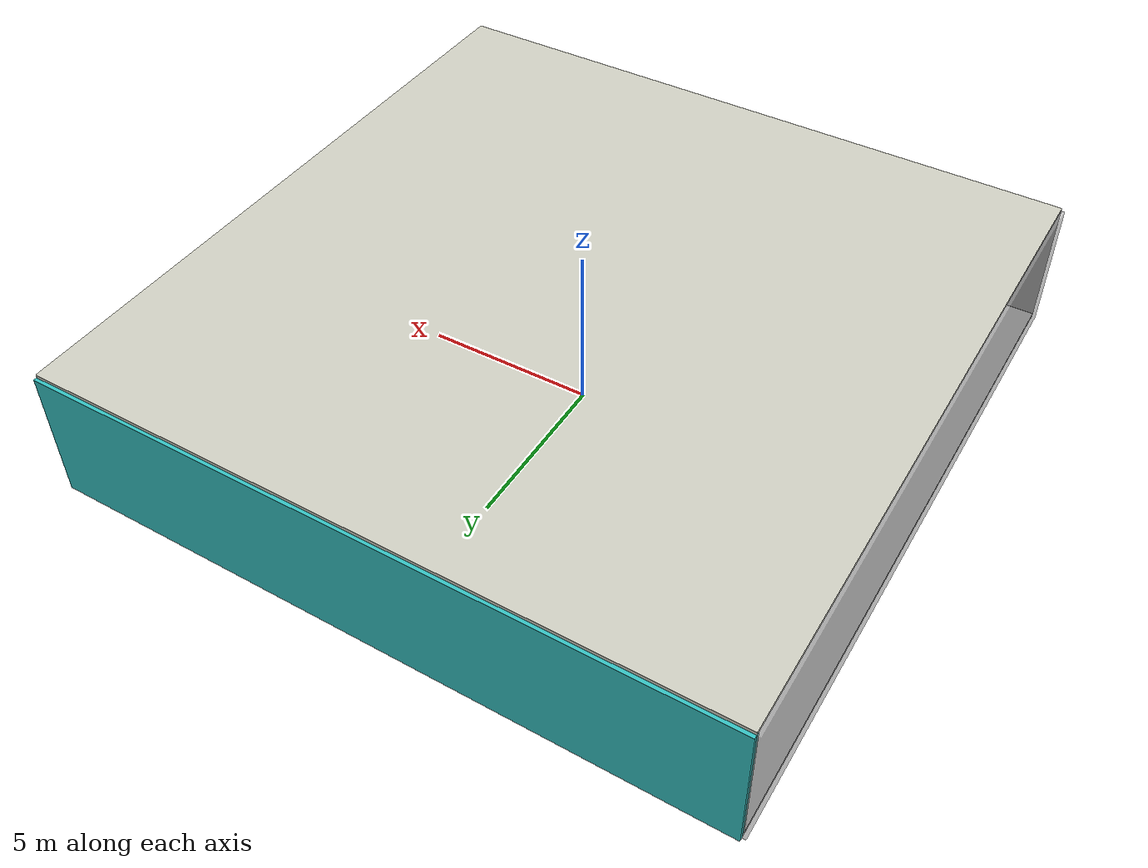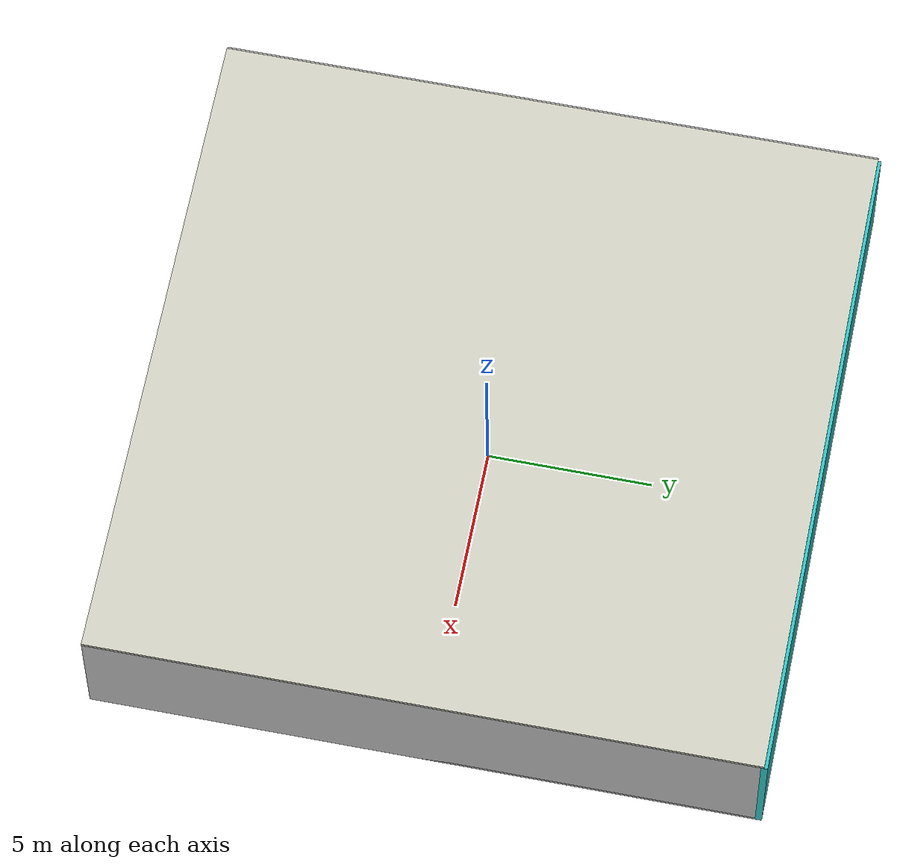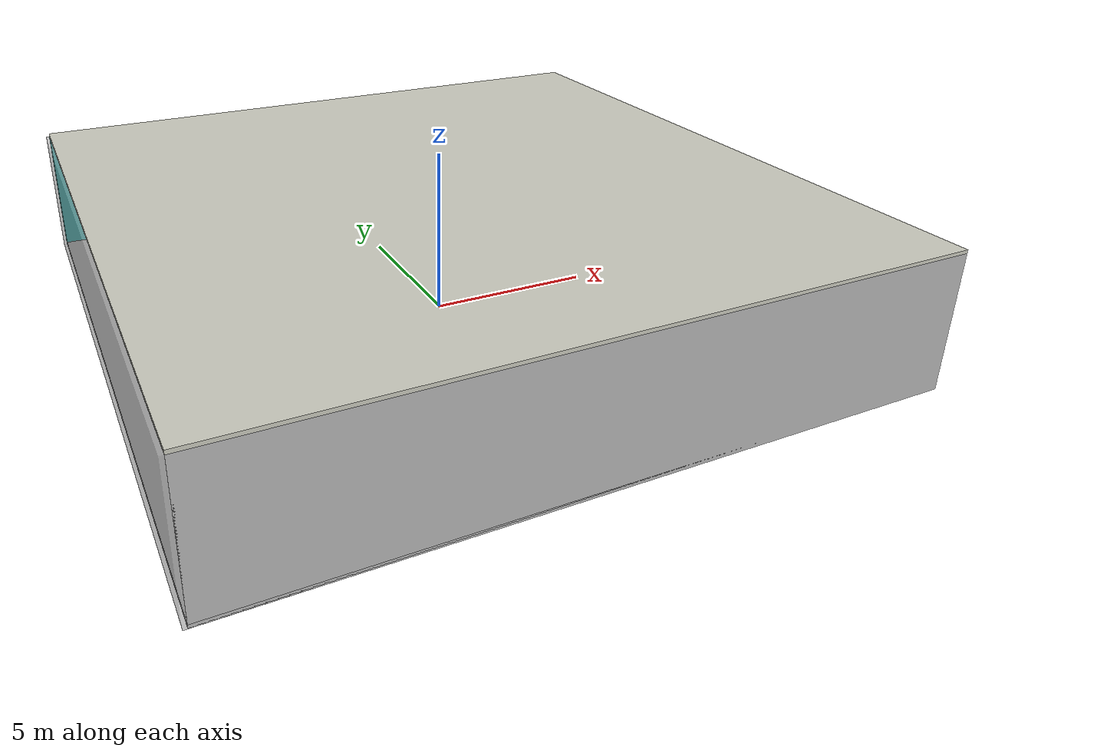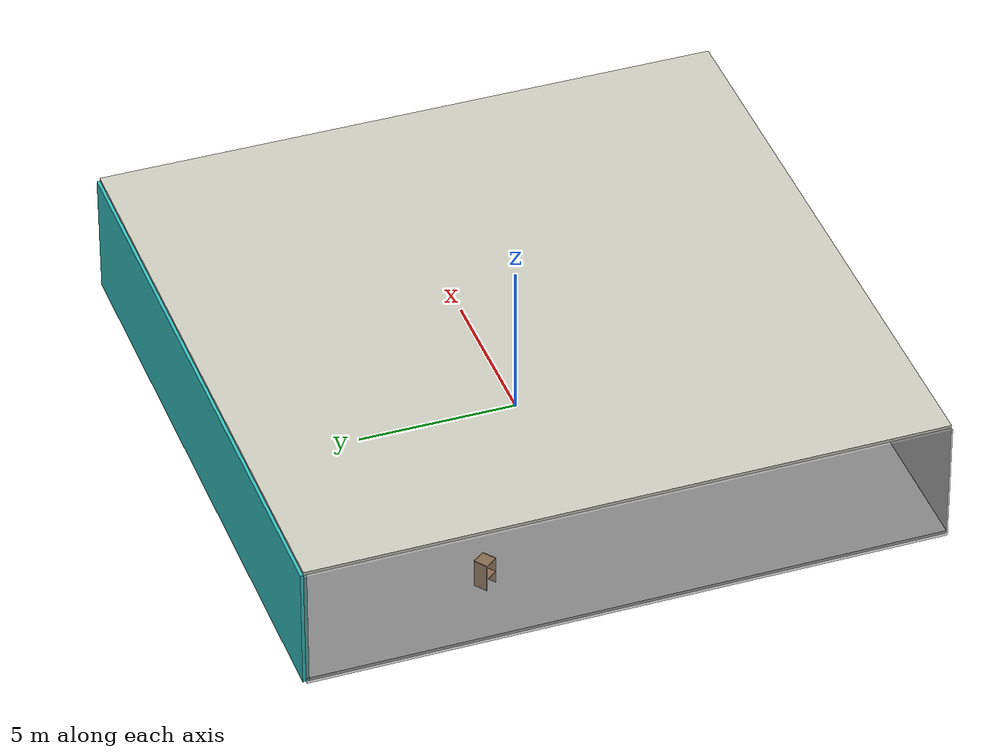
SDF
<sdf version="1.4">
 <world name="default">
  <physics type="ode">
   <max_step_size>0.001</max_step_size>
   <real_time_factor>1</real_time_factor>
   <real_time_update_rate>1000</real_time_update_rate>
   <gravity>0 0 -9.8</gravity>
  </physics>
  <scene><ambient>0.4 0.4 0.4 1</ambient><background>0.7 0.7 0.7 1</background><shadows>1</shadows></scene>
  <model name="Surrounding">
   <static>1</static>
   <link name="Ceiling">
    <collision name="Ceiling_Collision"><geometry><box><size>20 20 0.1</size></box></geometry></collision>
    <visual name="Ceiling_Visual">
     <geometry><box><size>20 20 0.1</size></box></geometry>
     <material>
      <script><uri>file://media/materials/scripts/gazebo.material</uri><name>Gazebo/PaintedWall</name></script>
     </material>
    </visual>
    <pose>0 0 4.05 0 0 0</pose>
   </link>
   <link name="Wall_South">
    <collision name="Wall_South_Collision">
     <geometry><box><size>20 0 4</size></box></geometry>
     <pose>0 0 2 0 -0 0</pose>
    </collision>
    <visual name="Wall_South_Visual">
     <pose>0 0 2 0 -0 0</pose>
     <geometry><box><size>20 0 4</size></box></geometry>
     <material>
      <script><uri>file://media/materials/scripts/gazebo.material</uri><name>Gazebo/PioneerBody</name></script>
     </material>
    </visual>
    <velocity_decay><linear>0</linear><angular>0</angular></velocity_decay>
    <pose>0 -10 0 0 -0 0</pose>
   </link>
   <link name="Wall_East">
    <collision name="Wall_21_Collision">
     <geometry><box><size>20 0 4</size></box></geometry>
     <pose>0 0 2 0 -0 0</pose>
    </collision>
    <visual name="Wall_21_Visual">
     <pose>0 0 2 0 -0 0</pose>
     <geometry><box><size>20 0 4</size></box></geometry>
     <material>
      <script><uri>file://media/materials/scripts/gazebo.material</uri><name>Gazebo/Pioneer2Body</name></script>
     </material>
    </visual>
    <velocity_decay><linear>0</linear><angular>0</angular></velocity_decay>
    <pose>10 0 0 0 -0 1.5708</pose>
   </link>
   <link name="Wall_North">
    <collision name="Wall_22_Collision">
     <geometry><box><size>20 0.2 4</size></box></geometry>
     <pose>0 0 2 0 -0 0</pose>
    </collision>
    <visual name="Wall_22_Visual">
     <pose>0 0 2 0 -0 0</pose>
     <geometry><box><size>20 0.2 4</size></box></geometry>
     <material>
      <script><uri>file://media/materials/scripts/gazebo.material</uri><name>Gazebo/Turquoise</name></script>
     </material>
    </visual>
    <velocity_decay><linear>0</linear><angular>0</angular></velocity_decay>
    <pose>0 10 0 0 -0 0</pose>
   </link>
   <link name="Wall_West">
    <collision name="Wall_23_Collision">
     <geometry><box><size>20 0.2 4</size></box></geometry>
     <pose>0 0 2 0 -0 0</pose>
    </collision>
    <visual name="Wall_23_Visual">
     <pose>0 0 2 0 -0 0</pose>
     <geometry><box><size>20 0.2 4</size></box></geometry>
     <material>
      <script><uri>file://media/materials/scripts/gazebo.material</uri><name>Gazebo/GreyTransparent</name></script>
     </material>
    </visual>
    <velocity_decay><linear>0</linear><angular>0</angular></velocity_decay>
    <pose>-10 0 0 0 0 -1.5708</pose>
   </link>
   <link name="Ground_link">
    <collision name="collision">
     <pose>0 0 .05 0 -0 0</pose>
     <geometry><box><size>20 20 0.1</size></box></geometry>
    </collision>
    <visual name="visual">
     <pose>0 0 .05 0 -0 0</pose>
     <geometry><box><size>20 20 0.1</size></box></geometry>
     <material>
      <script><uri>file://media/materials/scripts/gazebo.material</uri><name>Gazebo/LightOn</name></script>
     </material>
    </visual>
   </link>
   <static>1</static>
  </model>
  <spherical_coordinates>
   <surface_model>EARTH_WGS84</surface_model>
   <latitude_deg>0</latitude_deg>
   <longitude_deg>0</longitude_deg>
   <elevation>0</elevation>
   <heading_deg>0</heading_deg>
  </spherical_coordinates>
  <light name="lightball_0" type="diffuse">
   <diffuse>0.8 0.8 0.8 1</diffuse>
   <specular>0.2 0.2 0.2 1</specular>
   <attenuation>
    <range>100</range>
    <constant>0.7</constant>
    <linear>0.01</linear>
    <quadratic>0.001</quadratic>
   </attenuation>
   <direction>-0.5 0.1 -0.9</direction>
   <pose>0.79655664978 4.41721636475 1.49317155889 0 0 0</pose>
  </light>
  <light name="lightball_1" type="diffuse">
   <diffuse>0.8 0.8 0.8 1</diffuse>
   <specular>0.2 0.2 0.2 1</specular>
   <attenuation>
    <range>100</range>
    <constant>0.7</constant>
    <linear>0.01</linear>
    <quadratic>0.001</quadratic>
   </attenuation>
   <direction>-0.5 0.1 -0.9</direction>
   <pose>-9.33260055244 9.564181343 1.40150661745 0 0 0</pose>
  </light>
  <light name="lightball_2" type="diffuse">
   <diffuse>0.8 0.8 0.8 1</diffuse>
   <specular>0.2 0.2 0.2 1</specular>
   <attenuation>
    <range>100</range>
    <constant>0.7</constant>
    <linear>0.01</linear>
    <quadratic>0.001</quadratic>
   </attenuation>
   <direction>-0.5 0.1 -0.9</direction>
   <pose>0.845576953737 -6.53374241192 3.06579331002 0 0 0</pose>
  </light>
  <light name="lightball_3" type="diffuse">
   <diffuse>0.8 0.8 0.8 1</diffuse>
   <specular>0.2 0.2 0.2 1</specular>
   <attenuation>
    <range>100</range>
    <constant>0.7</constant>
    <linear>0.01</linear>
    <quadratic>0.001</quadratic>
   </attenuation>
   <direction>-0.5 0.1 -0.9</direction>
   <pose>-4.68600870783 8.01780653368 2.72385067451 0 0 0</pose>
  </light>
  <light name="lightball_4" type="diffuse">
   <diffuse>0.8 0.8 0.8 1</diffuse>
   <specular>0.2 0.2 0.2 1</specular>
   <attenuation>
    <range>100</range>
    <constant>0.7</constant>
    <linear>0.01</linear>
    <quadratic>0.001</quadratic>
   </attenuation>
   <direction>-0.5 0.1 -0.9</direction>
   <pose>0.733835791448 -0.0148850710824 3.23135952543 0 0 0</pose>
  </light>
  <light name="lightball_5" type="diffuse">
   <diffuse>0.8 0.8 0.8 1</diffuse>
   <specular>0.2 0.2 0.2 1</specular>
   <attenuation>
    <range>100</range>
    <constant>0.7</constant>
    <linear>0.01</linear>
    <quadratic>0.001</quadratic>
   </attenuation>
   <direction>-0.5 0.1 -0.9</direction>
   <pose>-5.75860791071 -9.18879139897 2.29703889861 0 0 0</pose>
  </light>
  <light name="lightball_6" type="diffuse">
   <diffuse>0.8 0.8 0.8 1</diffuse>
   <specular>0.2 0.2 0.2 1</specular>
   <attenuation>
    <range>100</range>
    <constant>0.7</constant>
    <linear>0.01</linear>
    <quadratic>0.001</quadratic>
   </attenuation>
   <direction>-0.5 0.1 -0.9</direction>
   <pose>5.28841198362 -7.32094262097 1.13588632251 0 0 0</pose>
  </light>
  <light name="lightball_7" type="diffuse">
   <diffuse>0.8 0.8 0.8 1</diffuse>
   <specular>0.2 0.2 0.2 1</specular>
   <attenuation>
    <range>100</range>
    <constant>0.7</constant>
    <linear>0.01</linear>
    <quadratic>0.001</quadratic>
   </attenuation>
   <direction>-0.5 0.1 -0.9</direction>
   <pose>6.13320733943 0.699432867204 2.94540294461 0 0 0</pose>
  </light>
  <light name="lightball_8" type="diffuse">
   <diffuse>0.8 0.8 0.8 1</diffuse>
   <specular>0.2 0.2 0.2 1</specular>
   <attenuation>
    <range>100</range>
    <constant>0.7</constant>
    <linear>0.01</linear>
    <quadratic>0.001</quadratic>
   </attenuation>
   <direction>-0.5 0.1 -0.9</direction>
   <pose>5.62869039959 -8.17017106224 1.88584269261 0 0 0</pose>
  </light>
  <light name="lightball_9" type="diffuse">
   <diffuse>0.8 0.8 0.8 1</diffuse>
   <specular>0.2 0.2 0.2 1</specular>
   <attenuation>
    <range>100</range>
    <constant>0.7</constant>
    <linear>0.01</linear>
    <quadratic>0.001</quadratic>
   </attenuation>
   <direction>-0.5 0.1 -0.9</direction>
   <pose>2.80014704025 -3.9552362819 3.23219062013 0 0 0</pose>
  </light>
  <light name="lightball_10" type="diffuse">
   <diffuse>0.8 0.8 0.8 1</diffuse>
   <specular>0.2 0.2 0.2 1</specular>
   <attenuation>
    <range>100</range>
    <constant>0.7</constant>
    <linear>0.01</linear>
    <quadratic>0.001</quadratic>
   </attenuation>
   <direction>-0.5 0.1 -0.9</direction>
   <pose>-6.1647719568 4.72651464803 2.96741380506 0 0 0</pose>
  </light>
  <light name="lightball_11" type="diffuse">
   <diffuse>0.8 0.8 0.8 1</diffuse>
   <specular>0.2 0.2 0.2 1</specular>
   <attenuation>
    <range>100</range>
    <constant>0.7</constant>
    <linear>0.01</linear>
    <quadratic>0.001</quadratic>
   </attenuation>
   <direction>-0.5 0.1 -0.9</direction>
   <pose>-5.65165234125 1.05979037678 0.878435079208 0 0 0</pose>
  </light>
  <include><uri>model://cabinet</uri><pose>-7.71670725769 3.70330431099 0 0 0 0.630978224208</pose></include>
  <include>
   <uri>model://construction_cone</uri>
   <pose>-4.26157276436 -7.72325032814 0 0 0 1.02080173941</pose>
  </include>
  <include>
   <uri>model://robocup_3Dsim_goal</uri>
   <pose>1.70472190415 -8.21606167335 0 0 0 1.62904426473</pose>
  </include>
  <include><uri>model://cabinet</uri><pose>1.41789603419 2.17636649325 0 0 0 0.593193787765</pose></include>
  <include><uri>model://table</uri><pose>4.84683601922 4.85283262173 0 0 0 0.270926860603</pose></include>
 </world>
</sdf>

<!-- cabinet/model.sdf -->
<sdf version="1.5">
  <model name="cabinet">
    <static>true</static>
    <link name="cabinet_bottom_plate">
      <inertial>
        <pose>0 0 -1 0 0 0</pose>
        <inertia>
          <ixx>2.050000</ixx>
          <ixy>0</ixy>
          <ixz>0</ixz>
          <iyy>2.050000</iyy>
          <iyz>0</iyz>
          <izz>2.050000</izz>
        </inertia>
        <mass>25.000000</mass>
      </inertial>
      <collision name="cabinet_bottom_plate_geom">
        <pose>0 0 0.010000 0 0 0</pose>
        <geometry>
          <box>
            <size>0.450000 0.450000 0.020000</size>
          </box>
        </geometry>
      </collision>
      <visual name="cabinet_bottom_plate_geom_visual">
        <pose>0 0 0.010000 0 0 0</pose>
        <geometry>
          <box>
            <size>0.450000 0.450000 0.020000</size>
          </box>
        </geometry>
        <material>
          <script>
            <uri>model://media/materials/scripts/gazebo.material</uri>
            <name>Gazebo/Wood</name>
          </script>
        </material>
      </visual>
      <collision name="cabinet_bottom_plate_geom_cabinet_back_plate">
        <pose>0.235000 0 0.510000 0 0 0</pose>
        <geometry>
          <box>
            <size>0.020000 0.450000 1.020000</size>
          </box>
        </geometry>
      </collision>
      <visual name="cabinet_bottom_plate_geom_cabinet_back_plate_visual">
        <pose>0.235000 0 0.510000 0 0 0</pose>
        <geometry>
          <box>
            <size>0.020000 0.450000 1.020000</size>
          </box>
        </geometry>
        <material>
          <script>
            <uri>model://media/materials/scripts/gazebo.material</uri>
            <name>Gazebo/Wood</name>
          </script>
        </material>
      </visual>
      <collision name="cabinet_bottom_plate_geom_cabinet_left_plate">
        <pose>0 0.235000 0.510000 0 0 0</pose>
        <geometry>
          <box>
            <size>0.450000 0.020000 1.020000</size>
          </box>
        </geometry>
      </collision>
      <visual name="cabinet_bottom_plate_geom_cabinet_left_plate_visual">
        <pose>0 0.235000 0.510000 0 0 0</pose>
        <geometry>
          <box>
            <size>0.450000 0.020000 1.020000</size>
          </box>
        </geometry>
        <material>
          <script>
            <uri>model://media/materials/scripts/gazebo.material</uri>
            <name>Gazebo/Wood</name>
          </script>
        </material>
      </visual>
      <collision name="cabinet_bottom_plate_geom_cabinet_middle_plate">
        <pose>0 0 0.510000 0 0 0</pose>
        <geometry>
          <box>
            <size>0.450000 0.450000 0.020000</size>
          </box>
        </geometry>
      </collision>
      <visual name="cabinet_bottom_plate_geom_cabinet_middle_plate_visual">
        <pose>0 0 0.510000 0 0 0</pose>
        <geometry>
          <box>
            <size>0.450000 0.450000 0.020000</size>
          </box>
        </geometry>
        <material>
          <script>
            <uri>model://media/materials/scripts/gazebo.material</uri>
            <name>Gazebo/Wood</name>
          </script>
        </material>
      </visual>
      <collision name="cabinet_bottom_plate_geom_cabinet_right_plate">
        <pose>0 -0.235000 0.510000 0 0 0</pose>
        <geometry>
          <box>
            <size>0.450000 0.020000 1.020000</size>
          </box>
        </geometry>
      </collision>
      <visual name="cabinet_bottom_plate_geom_cabinet_right_plate_visual">
        <pose>0 -0.235000 0.510000 0 0 0</pose>
        <geometry>
          <box>
            <size>0.450000 0.020000 1.020000</size>
          </box>
        </geometry>
        <material>
          <script>
            <uri>model://media/materials/scripts/gazebo.material</uri>
            <name>Gazebo/Wood</name>
          </script>
        </material>
      </visual>
      <collision name="cabinet_bottom_plate_geom_cabinet_top_plate">
        <pose>0 0 1.010000 0 0 0</pose>
        <geometry>
          <box>
            <size>0.450000 0.450000 0.020000</size>
          </box>
        </geometry>
      </collision>
      <visual name="cabinet_bottom_plate_geom_cabinet_top_plate_visual">
        <pose>0 0 1.010000 0 0 0</pose>
        <geometry>
          <box>
            <size>0.450000 0.450000 0.020000</size>
          </box>
        </geometry>
        <material>
          <script>
            <uri>model://media/materials/scripts/gazebo.material</uri>
            <name>Gazebo/Wood</name>
          </script>
        </material>
      </visual>
    </link>
  </model>
</sdf>

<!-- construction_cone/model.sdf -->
<sdf version="1.5">
  <model name="Construction Cone">
    <link name="link">
      <collision name="collision">
        <geometry>
          <mesh>
            <scale>10 10 10</scale>
            <uri>file://isr-testbed/construction_cone/meshes/construction_cone.dae</uri>
          </mesh>
        </geometry>
      </collision>
      <visual name="visual">
        <geometry>
          <mesh>
            <scale>10 10 10</scale>
            <uri>file://isr-testbed/construction_cone/meshes/construction_cone.dae</uri>
          </mesh>
        </geometry>
      </visual>
    </link>
  </model>
</sdf>

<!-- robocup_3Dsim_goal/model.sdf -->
<sdf version="1.5">
  <model name="robocup_3d_goal">
    <static>true</static>
    <link name="left_post">
      <pose>0 1.05 0.45 0 0 0</pose>
      <collision name="collision">
        <geometry>
          <cylinder>
            <radius>0.05</radius>
            <length>0.9</length>
          </cylinder>
        </geometry>
      </collision>
      <visual name="visual">
        <geometry>
          <cylinder>
            <radius>0.05</radius>
            <length>0.9</length>
          </cylinder>
        </geometry>
        <material>
          <script>
            <uri>file://media/materials/scripts/gazebo.material</uri>
            <name>Gazebo/ZincYellow</name>
          </script>
        </material>
      </visual>
    </link>
    <link name="left_support_horiz_lower">
      <pose>0.30 1.05 0.01 0 0 0</pose>
      <collision name="collision">
        <geometry>
          <box>
            <size>0.50 0.02 0.02</size>
          </box>
        </geometry>
      </collision>
      <visual name="visual">
        <geometry>
          <box>
            <size>0.50 0.02 0.02</size>
          </box>
        </geometry>
        <material>
          <script>
            <uri>file://media/materials/scripts/gazebo.material</uri>
            <name>Gazebo/White</name>
          </script>
        </material>
      </visual>
    </link>
    <link name="left_support_horiz_upper">
      <pose>0.30 1.05 0.79 0 0 0</pose>
      <collision name="collision">
        <geometry>
          <box>
            <size>0.50 0.02 0.02</size>
          </box>
        </geometry>
      </collision>
      <visual name="visual">
        <geometry>
          <box>
            <size>0.50 0.02 0.02</size>
          </box>
        </geometry>
        <material>
          <script>
            <uri>file://media/materials/scripts/gazebo.material</uri>
            <name>Gazebo/White</name>
          </script>
        </material>
      </visual>
    </link>
    <link name="left_support_vertical">
      <pose>0.56 1.05 0.4 0 1.5708 0</pose>
      <collision name="collision">
        <geometry>
          <box>
            <size>0.80 0.02 0.02</size>
          </box>
        </geometry>
      </collision>
      <visual name="visual">
        <geometry>
          <box>
            <size>0.80 0.02 0.02</size>
          </box>
        </geometry>
        <material>
          <script>
            <uri>file://media/materials/scripts/gazebo.material</uri>
            <name>Gazebo/White</name>
          </script>
        </material>
      </visual>
    </link>
    <link name="right_support_horiz_lower">
      <pose>0.30 -1.05 0.01 0 0 0</pose>
      <collision name="collision">
        <geometry>
          <box>
            <size>0.50 0.02 0.02</size>
          </box>
        </geometry>
      </collision>
      <visual name="visual">
        <geometry>
          <box>
            <size>0.50 0.02 0.02</size>
          </box>
        </geometry>
        <material>
          <script>
            <uri>file://media/materials/scripts/gazebo.material</uri>
            <name>Gazebo/White</name>
          </script>
        </material>
      </visual>
    </link>
    <link name="right_support_horiz_upper">
      <pose>0.30 -1.05 0.79 0 0 0</pose>
      <collision name="collision">
        <geometry>
          <box>
            <size>0.50 0.02 0.02</size>
          </box>
        </geometry>
      </collision>
      <visual name="visual">
        <geometry>
          <box>
            <size>0.50 0.02 0.02</size>
          </box>
        </geometry>
        <material>
          <script>
            <uri>file://media/materials/scripts/gazebo.material</uri>
            <name>Gazebo/White</name>
          </script>
        </material>
      </visual>
    </link>
    <link name="right_support_vertical">
      <pose>0.56 -1.05 0.4 0 1.5708 0</pose>
      <collision name="collision">
        <geometry>
          <box>
            <size>0.80 0.02 0.02</size>
          </box>
        </geometry>
      </collision>
      <visual name="visual">
        <geometry>
          <box>
            <size>0.80 0.02 0.02</size>
          </box>
        </geometry>
        <material>
          <script>
            <uri>file://media/materials/scripts/gazebo.material</uri>
            <name>Gazebo/White</name>
          </script>
        </material>
      </visual>
    </link>
    <link name="center_support_horiz_lower">
      <pose>0.56 0 0.01 0 1.5708 0</pose>
      <collision name="collision">
        <geometry>
          <box>
            <size>0.02 2.08 0.02</size>
          </box>
        </geometry>
      </collision>
      <visual name="visual">
        <geometry>
          <box>
            <size>0.02 2.08 0.02</size>
          </box>
        </geometry>
        <material>
          <script>
            <uri>file://media/materials/scripts/gazebo.material</uri>
            <name>Gazebo/White</name>
          </script>
        </material>
      </visual>
    </link>
    <link name="center_support_horiz_upper">
      <pose>0.56 0 0.79 0 1.5708 0</pose>
      <collision name="collision">
        <geometry>
          <box>
            <size>0.02 2.08 0.02</size>
          </box>
        </geometry>
      </collision>
      <visual name="visual">
        <geometry>
          <box>
            <size>0.02 2.08 0.02</size>
          </box>
        </geometry>
        <material>
          <script>
            <uri>file://media/materials/scripts/gazebo.material</uri>
            <name>Gazebo/White</name>
          </script>
        </material>
      </visual>
    </link>
    <link name="right_post">
      <pose>0 -1.05 0.45 0 0 0</pose>
      <collision name="collision">
        <geometry>
          <cylinder>
            <radius>0.05</radius>
            <length>0.9</length>
          </cylinder>
        </geometry>
      </collision>
      <visual name="visual">
        <geometry>
          <cylinder>
            <radius>0.05</radius>
            <length>0.9</length>
          </cylinder>
        </geometry>
        <material>
          <script>
            <uri>file://media/materials/scripts/gazebo.material</uri>
            <name>Gazebo/ZincYellow</name>
          </script>
        </material>
      </visual>
    </link>
    <link name="crossbar">
      <pose>0 0 0.85 1.57 1.57 0</pose>
      <collision name="collision">
        <geometry>
          <cylinder>
            <radius>0.05</radius>
            <length>2.0</length>
          </cylinder>
        </geometry>
      </collision>
      <visual name="visual">
        <geometry>
          <cylinder>
            <radius>0.05</radius>
            <length>2.0</length>
          </cylinder>
        </geometry>
        <material>
          <script>
            <uri>file://media/materials/scripts/gazebo.material</uri>
            <name>Gazebo/ZincYellow</name>
          </script>
        </material>
      </visual>
    </link>
    <link name="center_net">
      <pose>0.56 0 0.40 0 0 0</pose>
      <collision name="collision">
        <geometry>
          <box>
            <size>0.01 2.1 0.80</size>
          </box>
        </geometry>
      </collision>
      <visual name="visual">
        <geometry>
          <box>
            <size>0.01 2.1 0.80</size>
          </box>
        </geometry>
        <material>
          <script>
            <uri>model://../model_source/models/robocup09_spl_field/materials/scripts/</uri>
            <uri>model://../model_source/models/robocup09_spl_field/materials/textures/</uri>
            <name>RoboCup/Net</name>
          </script>
        </material>
      </visual>
    </link>
    <link name="left_net">
      <pose>0.30 1.05 0.40 0 0 0</pose>
      <collision name="collision">
        <geometry>
          <box>
            <size>0.50 0.01 0.76</size>
          </box>
        </geometry>
      </collision>
      <visual name="visual">
        <geometry>
          <box>
            <size>0.50 0.01 0.76</size>
          </box>
        </geometry>
        <material>
          <script>
            <uri>model://../model_source/models/robocup09_spl_field/materials/scripts/</uri>
            <uri>model://../model_source/models/robocup09_spl_field/materials/textures/</uri>
            <name>RoboCup/Net</name>
          </script>
        </material>
      </visual>
    </link>
    <link name="right_net">
      <pose>0.30 -1.05 0.40 0 0 0</pose>
      <collision name="collision">
        <geometry>
          <box>
            <size>0.50 0.01 0.76</size>
          </box>
        </geometry>
      </collision>
      <visual name="visual">
        <geometry>
          <box>
            <size>0.50 0.01 0.76</size>
          </box>
        </geometry>
        <material>
          <script>
            <uri>model://../model_source/models/robocup09_spl_field/materials/scripts/</uri>
            <uri>model://../model_source/models/robocup09_spl_field/materials/textures/</uri>
            <name>RoboCup/Net</name>
          </script>
        </material>
      </visual>
    </link>
  </model>
</sdf>

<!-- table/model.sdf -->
<sdf version="1.5">
  <model name="table">
    <static>true</static>
    <link name="link">
      <collision name="surface">
        <pose>0 0 1.0 0 0 0</pose>
        <geometry>
          <box>
            <size>1.5 0.8 0.03</size>
          </box>
        </geometry>
        <surface>
          <friction>
            <ode>
              <mu>0.6</mu>
              <mu2>0.6</mu2>
            </ode>
          </friction>
        </surface>
      </collision>
      <visual name="visual1">
        <pose>0 0 1.0 0 0 0</pose>
        <geometry>
          <box>
            <size>1.5 0.8 0.03</size>
          </box>
        </geometry>
        <material>
          <script>
            <uri>model://media/materials/scripts/gazebo.material</uri>
            <name>Gazebo/Wood</name>
          </script>
        </material>
      </visual>
      <collision name="front_left_leg">
        <pose>0.68 0.38 0.5 0 0 0</pose>
        <geometry>
          <cylinder>
            <radius>0.02</radius>
            <length>1.0</length>
          </cylinder>
        </geometry>
      </collision>
      <visual name="front_left_leg">
        <pose>0.68 0.38 0.5 0 0 0</pose>
        <geometry>
          <cylinder>
            <radius>0.02</radius>
            <length>1.0</length>
          </cylinder>
        </geometry>
        <material>
          <script>
            <uri>model://media/materials/scripts/gazebo.material</uri>
            <name>Gazebo/Grey</name>
          </script>
        </material>
      </visual>
      <collision name="front_right_leg">
        <pose>0.68 -0.38 0.5 0 0 0</pose>
        <geometry>
          <cylinder>
            <radius>0.02</radius>
            <length>1.0</length>
          </cylinder>
        </geometry>
      </collision>
      <visual name="front_right_leg">
        <pose>0.68 -0.38 0.5 0 0 0</pose>
        <geometry>
          <cylinder>
            <radius>0.02</radius>
            <length>1.0</length>
          </cylinder>
        </geometry>
        <material>
          <script>
            <uri>model://media/materials/scripts/gazebo.material</uri>
            <name>Gazebo/Grey</name>
          </script>
        </material>
      </visual>
      <collision name="back_right_leg">
        <pose>-0.68 -0.38 0.5 0 0 0</pose>
        <geometry>
          <cylinder>
            <radius>0.02</radius>
            <length>1.0</length>
          </cylinder>
        </geometry>
      </collision>
      <visual name="back_right_leg">
        <pose>-0.68 -0.38 0.5 0 0 0</pose>
        <geometry>
          <cylinder>
            <radius>0.02</radius>
            <length>1.0</length>
          </cylinder>
        </geometry>
        <material>
          <script>
            <uri>model://media/materials/scripts/gazebo.material</uri>
            <name>Gazebo/Grey</name>
          </script>
        </material>
      </visual>
      <collision name="back_left_leg">
        <pose>-0.68 0.38 0.5 0 0 0</pose>
        <geometry>
          <cylinder>
            <radius>0.02</radius>
            <length>1.0</length>
          </cylinder>
        </geometry>
      </collision>
      <visual name="back_left_leg">
        <pose>-0.68 0.38 0.5 0 0 0</pose>
        <geometry>
          <cylinder>
            <radius>0.02</radius>
            <length>1.0</length>
          </cylinder>
        </geometry>
        <material>
          <script>
            <uri>model://media/materials/scripts/gazebo.material</uri>
            <name>Gazebo/Grey</name>
          </script>
        </material>
      </visual>
    </link>
  </model>
</sdf>
